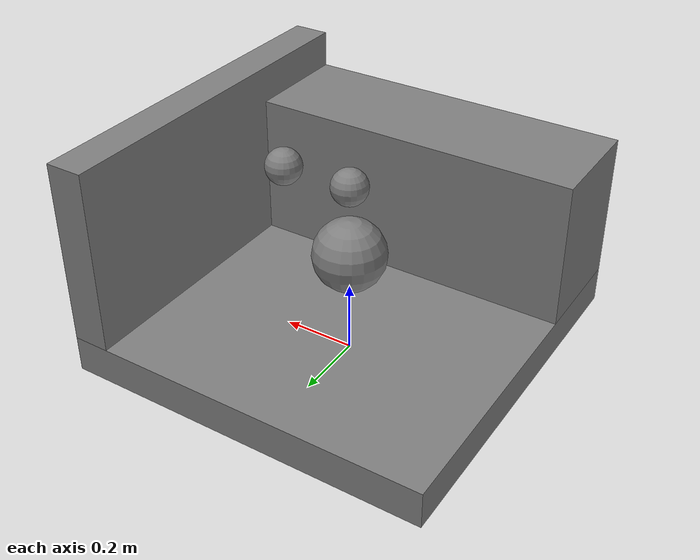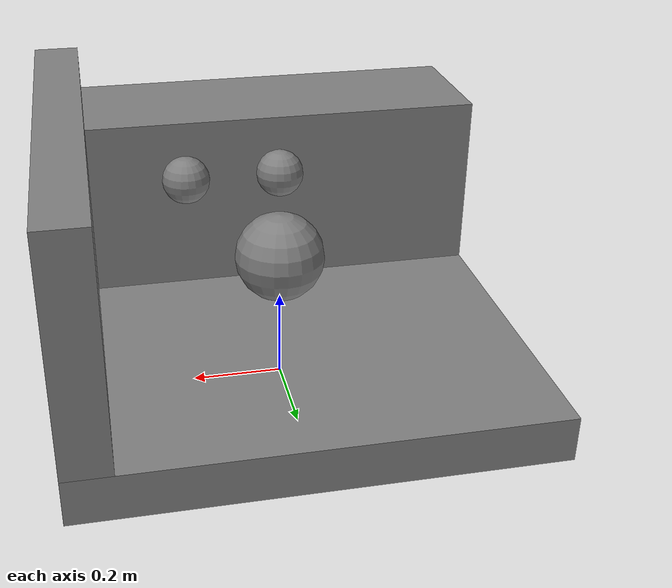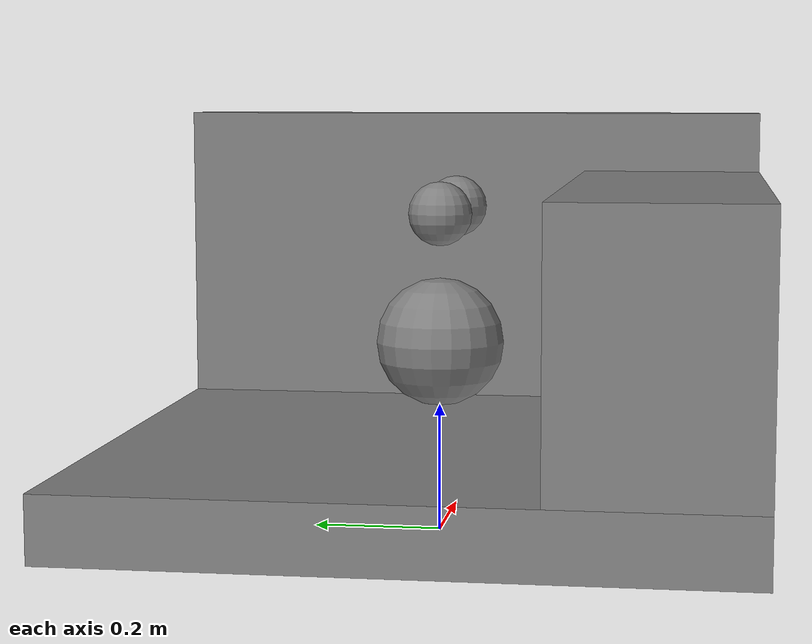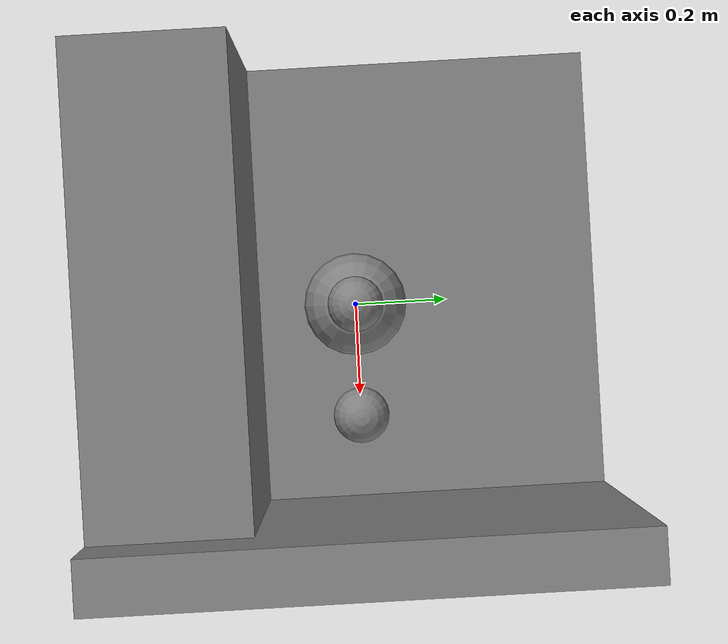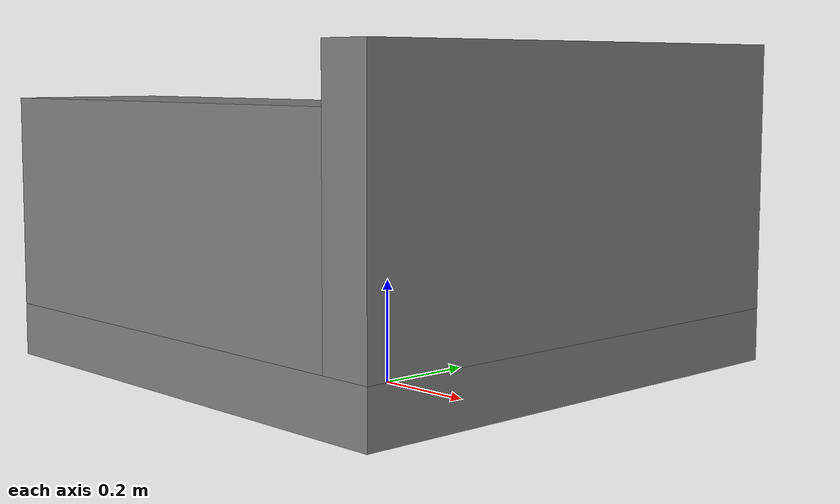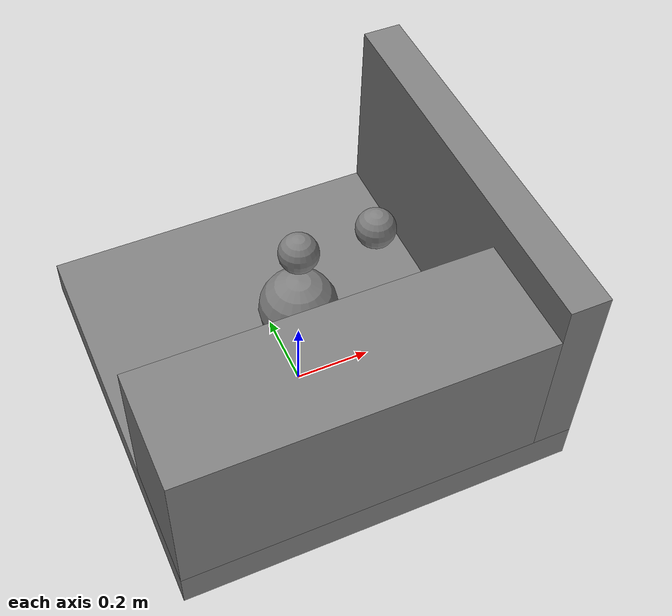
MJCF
<mujoco model="ry_convert">
  <asset />
  <actuator>
    <position name="l_joint1" joint="l_joint1" forcerange="-150 150" />
    <position name="l_joint2" joint="l_joint2" forcerange="-150 150" />
    <position name="l_fing" joint="l_fing" forcerange="-150 150" />
    <position name="r_joint1" joint="r_joint1" forcerange="-150 150" />
    <position name="r_joint2" joint="r_joint2" forcerange="-150 150" />
    <position name="r_fing" joint="r_fing" forcerange="-150 150" />
  </actuator>
  <worldbody>
    <body name="l_base" pos="0.0 0.0 0.5">
      <body name="l_joint1">
        <inertial pos="0 0 0" mass="0.01" diaginertia="1e-5 1e-5 1e-5" />
        <joint name="l_joint1" type="slide" axis="1 0 0" />
        <body name="l_joint2">
          <inertial pos="0 0 0" mass="0.01" diaginertia="1e-5 1e-5 1e-5" />
          <joint name="l_joint2" type="slide" axis="0 1 0" />
          <body name="l_fing">
            <geom type="sphere" size="0.05" />
            <joint name="l_fing" type="slide" axis="0 0 1" />
          </body>
        </body>
      </body>
    </body>
    <body name="r_base" pos="0.0 0.0 0.5">
      <body name="r_joint1" pos="0.2 0.0 0.0">
        <inertial pos="0 0 0" mass="0.01" diaginertia="1e-5 1e-5 1e-5" />
        <joint name="r_joint1" type="slide" axis="1 0 0" />
        <body name="r_joint2">
          <inertial pos="0 0 0" mass="0.01" diaginertia="1e-5 1e-5 1e-5" />
          <joint name="r_joint2" type="slide" axis="0 1 0" />
          <body name="r_fing">
            <geom type="sphere" size="0.05" />
            <joint name="r_fing" type="slide" axis="0 0 1" />
          </body>
        </body>
      </body>
    </body>
    <body name="base">
      <body name="table" pos="0.0 0.0 0.1">
        <geom type="box" size="0.5 0.5 0.05" />
        <body name="wall" pos="0.45 0.0 0.3">
          <geom type="box" size="0.05 0.5 0.25" />
        </body>
        <body name="box" pos="-0.05 -0.35 0.25">
          <geom type="box" size="0.45 0.15 0.2" />
        </body>
      </body>
    </body>
    <body name="obj" pos="0.0 0.0 0.3">
      <geom type="sphere" size="0.1" />
      <freejoint />
    </body>
  </worldbody>
</mujoco>
